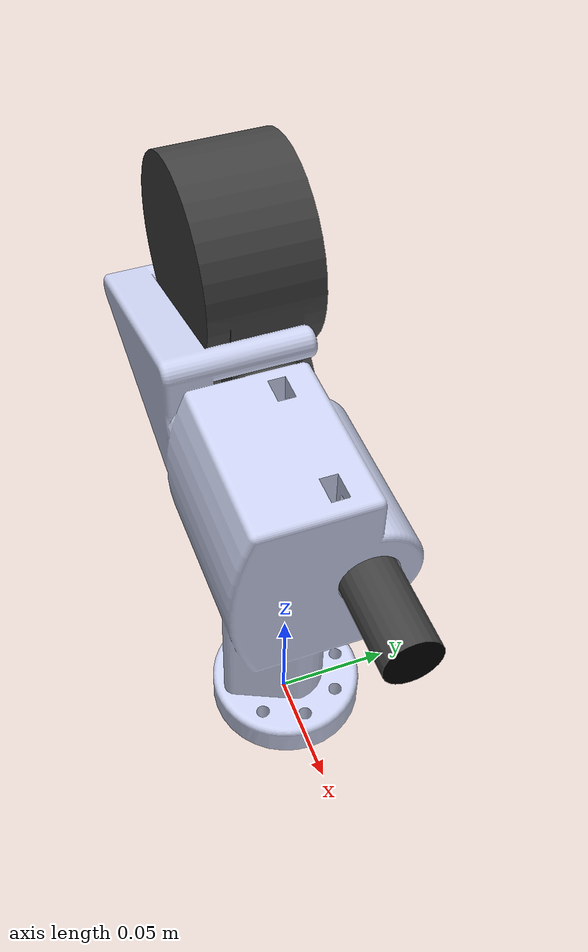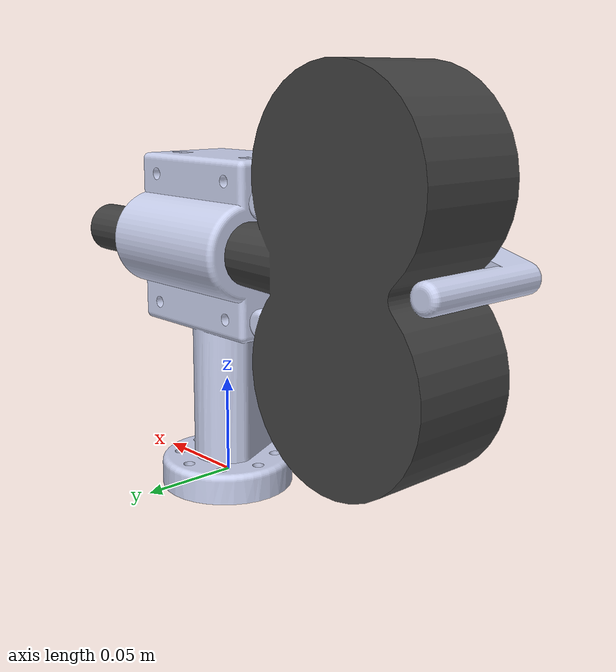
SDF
<?xml version="1.0" ?>
<sdf version="1.5">
  <model name="tms">
    <static>false</static>
    <link name="tms_link">
      <inertial>
        <pose>-0.038 -0.0046 0.12 0 0 0</pose>
        <mass>3.0</mass>
      </inertial>
      <collision name="collision">
        <pose>0.212 -0.0046 0.064 0 -1.57 0</pose>
        <geometry>
          <mesh>
            <uri>model://tms/meshes/tms.dae</uri>
          </mesh>
        </geometry>
      </collision>
      <visual name="visual">
        <pose>0.212 -0.0046 0.064 0 -1.57 0</pose>
        <geometry>
          <mesh>
            <uri>model://tms/meshes/tms.dae</uri>
          </mesh>
        </geometry>
      </visual>
    </link>
  </model>
</sdf>
